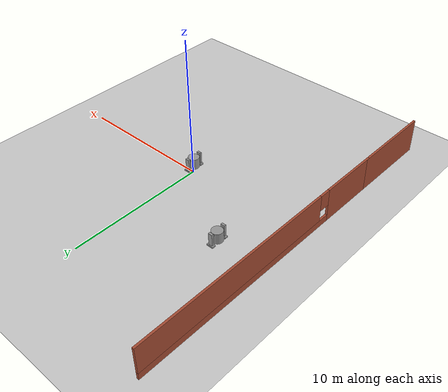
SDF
<sdf version="1.6">
 <world name="default">
  <model name="ground_plane">
   <static>1</static>
   <link name="link">
    <collision name="collision">
     <geometry><plane><normal>0 0 1</normal><size>100 100</size></plane></geometry>
     <surface>
      <contact><collide_bitmask>65535</collide_bitmask></contact>
      <friction><ode><mu>100</mu><mu2>50</mu2></ode></friction>
     </surface>
    </collision>
    <visual name="visual">
     <cast_shadows>0</cast_shadows>
     <geometry><plane><normal>0 0 1</normal><size>100 100</size></plane></geometry>
     <material>
      <script><uri>file://media/materials/scripts/gazebo.material</uri><name>Gazebo/Grey</name></script>
     </material>
    </visual>
   </link>
  </model>
  <model name="robot3">
   <link name="link_2">
    <pose>0.005 -0 -0.064976 0 -0 0</pose>
    <inertial>
     <mass>1</mass>
     <inertia><ixx>0.145833</ixx><ixy>0</ixy><ixz>0</ixz><iyy>0.145833</iyy><iyz>0</iyz><izz>0.125</izz></inertia>
    </inertial>
    <visual name="visual">
     <geometry><cylinder><radius>0.4</radius><length>0.8</length></cylinder></geometry>
     <material>
      <lighting>1</lighting>
      <script><uri>file://media/materials/scripts/gazebo.material</uri><name>Gazebo/Grey</name></script>
      <shader type="pixel"><normal_map>__default__</normal_map></shader>
      <ambient>0.3 0.3 0.3 1</ambient>
      <diffuse>0.7 0.7 0.7 1</diffuse>
      <specular>0.01 0.01 0.01 1</specular>
      <emissive>0 0 0 1</emissive>
     </material>
    </visual>
    <collision name="collision">
     <geometry><cylinder><radius>0.4</radius><length>0.8</length></cylinder></geometry>
     <surface>
      <friction>
       <ode><mu>1</mu><mu2>1</mu2><fdir1>0 0 0</fdir1><slip1>0</slip1><slip2>0</slip2></ode>
       <torsional>
        <coefficient>1</coefficient>
        <patch_radius>0</patch_radius>
        <surface_radius>0</surface_radius>
        <use_patch_radius>1</use_patch_radius>
        <ode><slip>0</slip></ode>
       </torsional>
      </friction>
      <bounce><restitution_coefficient>0</restitution_coefficient><threshold>1e+06</threshold></bounce>
      <contact>
       <collide_without_contact>0</collide_without_contact>
       <collide_without_contact_bitmask>1</collide_without_contact_bitmask>
       <collide_bitmask>1</collide_bitmask>
       <ode>
        <soft_cfm>0</soft_cfm>
        <soft_erp>0.2</soft_erp>
        <kp>1e+13</kp>
        <kd>1</kd>
        <max_vel>0.01</max_vel>
        <min_depth>0</min_depth>
       </ode>
       <bullet>
        <split_impulse>1</split_impulse>
        <split_impulse_penetration_threshold>-0.01</split_impulse_penetration_threshold>
        <soft_cfm>0</soft_cfm>
        <soft_erp>0.2</soft_erp>
        <kp>1e+13</kp>
        <kd>1</kd>
       </bullet>
      </contact>
     </surface>
    </collision>
   </link>
   <link name="link_0">
    <pose>0.00499 0.565134 -0.515032 -0.000625 0 -0.000608</pose>
    <inertial>
     <mass>1</mass>
     <inertia>
      <ixx>0.166667</ixx>
      <ixy>0</ixy>
      <ixz>0</ixz>
      <iyy>0.166667</iyy>
      <iyz>0</iyz>
      <izz>0.166667</izz>
     </inertia>
    </inertial>
    <visual name="visual">
     <geometry><box><size>0.5 0.25 0.1</size></box></geometry>
     <material>
      <lighting>1</lighting>
      <script><uri>file://media/materials/scripts/gazebo.material</uri><name>Gazebo/Grey</name></script>
      <shader type="pixel"><normal_map>__default__</normal_map></shader>
      <ambient>0.3 0.3 0.3 1</ambient>
      <diffuse>0.7 0.7 0.7 1</diffuse>
      <specular>0.01 0.01 0.01 1</specular>
      <emissive>0 0 0 1</emissive>
     </material>
    </visual>
    <collision name="collision">
     <geometry><box><size>0.5 0.25 0.1</size></box></geometry>
     <surface>
      <friction>
       <ode><mu>1</mu><mu2>1</mu2><fdir1>0 0 0</fdir1><slip1>0</slip1><slip2>0</slip2></ode>
       <torsional>
        <coefficient>1</coefficient>
        <patch_radius>0</patch_radius>
        <surface_radius>0</surface_radius>
        <use_patch_radius>1</use_patch_radius>
        <ode><slip>0</slip></ode>
       </torsional>
      </friction>
      <bounce><restitution_coefficient>0</restitution_coefficient><threshold>1e+06</threshold></bounce>
      <contact>
       <collide_without_contact>0</collide_without_contact>
       <collide_without_contact_bitmask>1</collide_without_contact_bitmask>
       <collide_bitmask>1</collide_bitmask>
       <ode>
        <soft_cfm>0</soft_cfm>
        <soft_erp>0.2</soft_erp>
        <kp>1e+13</kp>
        <kd>1</kd>
        <max_vel>0.01</max_vel>
        <min_depth>0</min_depth>
       </ode>
       <bullet>
        <split_impulse>1</split_impulse>
        <split_impulse_penetration_threshold>-0.01</split_impulse_penetration_threshold>
        <soft_cfm>0</soft_cfm>
        <soft_erp>0.2</soft_erp>
        <kp>1e+13</kp>
        <kd>1</kd>
       </bullet>
      </contact>
     </surface>
    </collision>
   </link>
   <link name="link_0_clone">
    <pose>0.00499 -0.535072 -0.514954 -0.00125 -1e-06 -0.001216</pose>
    <inertial>
     <mass>1</mass>
     <inertia>
      <ixx>0.166667</ixx>
      <ixy>0</ixy>
      <ixz>0</ixz>
      <iyy>0.166667</iyy>
      <iyz>0</iyz>
      <izz>0.166667</izz>
     </inertia>
    </inertial>
    <visual name="visual">
     <geometry><box><size>0.5 0.25 0.1</size></box></geometry>
     <material>
      <lighting>1</lighting>
      <script><uri>file://media/materials/scripts/gazebo.material</uri><name>Gazebo/Grey</name></script>
      <shader type="pixel"><normal_map>__default__</normal_map></shader>
      <ambient>0.3 0.3 0.3 1</ambient>
      <diffuse>0.7 0.7 0.7 1</diffuse>
      <specular>0.01 0.01 0.01 1</specular>
      <emissive>0 0 0 1</emissive>
     </material>
    </visual>
    <collision name="collision">
     <geometry><box><size>0.5 0.25 0.1</size></box></geometry>
     <surface>
      <friction>
       <ode><mu>1</mu><mu2>1</mu2><fdir1>0 0 0</fdir1><slip1>0</slip1><slip2>0</slip2></ode>
       <torsional>
        <coefficient>1</coefficient>
        <patch_radius>0</patch_radius>
        <surface_radius>0</surface_radius>
        <use_patch_radius>1</use_patch_radius>
        <ode><slip>0</slip></ode>
       </torsional>
      </friction>
      <bounce><restitution_coefficient>0</restitution_coefficient><threshold>1e+06</threshold></bounce>
      <contact>
       <collide_without_contact>0</collide_without_contact>
       <collide_without_contact_bitmask>1</collide_without_contact_bitmask>
       <collide_bitmask>1</collide_bitmask>
       <ode>
        <soft_cfm>0</soft_cfm>
        <soft_erp>0.2</soft_erp>
        <kp>1e+13</kp>
        <kd>1</kd>
        <max_vel>0.01</max_vel>
        <min_depth>0</min_depth>
       </ode>
       <bullet>
        <split_impulse>1</split_impulse>
        <split_impulse_penetration_threshold>-0.01</split_impulse_penetration_threshold>
        <soft_cfm>0</soft_cfm>
        <soft_erp>0.2</soft_erp>
        <kp>1e+13</kp>
        <kd>1</kd>
       </bullet>
      </contact>
     </surface>
    </collision>
   </link>
   <link name="link_3">
    <pose>-0.015 -1e-06 0.194928 1.5707 -0 0</pose>
    <inertial>
     <mass>1</mass>
     <inertia><ixx>0.145833</ixx><ixy>0</ixy><ixz>0</ixz><iyy>0.145833</iyy><iyz>0</iyz><izz>0.125</izz></inertia>
    </inertial>
    <visual name="visual">
     <geometry><cylinder><radius>0.1</radius><length>1.25</length></cylinder></geometry>
     <material>
      <lighting>1</lighting>
      <script><uri>file://media/materials/scripts/gazebo.material</uri><name>Gazebo/Grey</name></script>
      <shader type="pixel"><normal_map>__default__</normal_map></shader>
      <ambient>0.3 0.3 0.3 1</ambient>
      <diffuse>0.7 0.7 0.7 1</diffuse>
      <specular>0.01 0.01 0.01 1</specular>
      <emissive>0 0 0 1</emissive>
     </material>
    </visual>
    <collision name="collision">
     <geometry><cylinder><radius>0.1</radius><length>1.25</length></cylinder></geometry>
     <surface>
      <friction>
       <ode><mu>1</mu><mu2>1</mu2><fdir1>0 0 0</fdir1><slip1>0</slip1><slip2>0</slip2></ode>
       <torsional>
        <coefficient>1</coefficient>
        <patch_radius>0</patch_radius>
        <surface_radius>0</surface_radius>
        <use_patch_radius>1</use_patch_radius>
        <ode><slip>0</slip></ode>
       </torsional>
      </friction>
      <bounce><restitution_coefficient>0</restitution_coefficient><threshold>1e+06</threshold></bounce>
      <contact>
       <collide_without_contact>0</collide_without_contact>
       <collide_without_contact_bitmask>1</collide_without_contact_bitmask>
       <collide_bitmask>1</collide_bitmask>
       <ode>
        <soft_cfm>0</soft_cfm>
        <soft_erp>0.2</soft_erp>
        <kp>1e+13</kp>
        <kd>1</kd>
        <max_vel>0.01</max_vel>
        <min_depth>0</min_depth>
       </ode>
       <bullet>
        <split_impulse>1</split_impulse>
        <split_impulse_penetration_threshold>-0.01</split_impulse_penetration_threshold>
        <soft_cfm>0</soft_cfm>
        <soft_erp>0.2</soft_erp>
        <kp>1e+13</kp>
        <kd>1</kd>
       </bullet>
      </contact>
     </surface>
    </collision>
   </link>
   <link name="link_4">
    <pose>0.005 -0.550011 -0.064976 0 -0 0</pose>
    <inertial>
     <mass>1</mass>
     <inertia>
      <ixx>0.166667</ixx>
      <ixy>0</ixy>
      <ixz>0</ixz>
      <iyy>0.166667</iyy>
      <iyz>0</iyz>
      <izz>0.166667</izz>
     </inertia>
    </inertial>
    <visual name="visual">
     <geometry><box><size>0.3 0.15 1</size></box></geometry>
     <material>
      <lighting>1</lighting>
      <script><uri>file://media/materials/scripts/gazebo.material</uri><name>Gazebo/Grey</name></script>
      <shader type="pixel"><normal_map>__default__</normal_map></shader>
      <ambient>0.3 0.3 0.3 1</ambient>
      <diffuse>0.7 0.7 0.7 1</diffuse>
      <specular>0.01 0.01 0.01 1</specular>
      <emissive>0 0 0 1</emissive>
     </material>
    </visual>
    <collision name="collision">
     <geometry><box><size>0.3 0.15 1</size></box></geometry>
     <surface>
      <friction>
       <ode><mu>1</mu><mu2>1</mu2><fdir1>0 0 0</fdir1><slip1>0</slip1><slip2>0</slip2></ode>
       <torsional>
        <coefficient>1</coefficient>
        <patch_radius>0</patch_radius>
        <surface_radius>0</surface_radius>
        <use_patch_radius>1</use_patch_radius>
        <ode><slip>0</slip></ode>
       </torsional>
      </friction>
      <bounce><restitution_coefficient>0</restitution_coefficient><threshold>1e+06</threshold></bounce>
      <contact>
       <collide_without_contact>0</collide_without_contact>
       <collide_without_contact_bitmask>1</collide_without_contact_bitmask>
       <collide_bitmask>1</collide_bitmask>
       <ode>
        <soft_cfm>0</soft_cfm>
        <soft_erp>0.2</soft_erp>
        <kp>1e+13</kp>
        <kd>1</kd>
        <max_vel>0.01</max_vel>
        <min_depth>0</min_depth>
       </ode>
       <bullet>
        <split_impulse>1</split_impulse>
        <split_impulse_penetration_threshold>-0.01</split_impulse_penetration_threshold>
        <soft_cfm>0</soft_cfm>
        <soft_erp>0.2</soft_erp>
        <kp>1e+13</kp>
        <kd>1</kd>
       </bullet>
      </contact>
     </surface>
    </collision>
   </link>
   <link name="link_4_clone">
    <pose>0.005 0.550012 -0.064976 0 -0 0</pose>
    <inertial>
     <mass>1</mass>
     <inertia>
      <ixx>0.166667</ixx>
      <ixy>0</ixy>
      <ixz>0</ixz>
      <iyy>0.166667</iyy>
      <iyz>0</iyz>
      <izz>0.166667</izz>
     </inertia>
    </inertial>
    <visual name="visual">
     <geometry><box><size>0.3 0.15 1</size></box></geometry>
     <material>
      <lighting>1</lighting>
      <script><uri>file://media/materials/scripts/gazebo.material</uri><name>Gazebo/Grey</name></script>
      <shader type="pixel"><normal_map>__default__</normal_map></shader>
      <ambient>0.3 0.3 0.3 1</ambient>
      <diffuse>0.7 0.7 0.7 1</diffuse>
      <specular>0.01 0.01 0.01 1</specular>
      <emissive>0 0 0 1</emissive>
     </material>
    </visual>
    <collision name="collision">
     <geometry><box><size>0.3 0.15 1</size></box></geometry>
     <surface>
      <friction>
       <ode><mu>1</mu><mu2>1</mu2><fdir1>0 0 0</fdir1><slip1>0</slip1><slip2>0</slip2></ode>
       <torsional>
        <coefficient>1</coefficient>
        <patch_radius>0</patch_radius>
        <surface_radius>0</surface_radius>
        <use_patch_radius>1</use_patch_radius>
        <ode><slip>0</slip></ode>
       </torsional>
      </friction>
      <bounce><restitution_coefficient>0</restitution_coefficient><threshold>1e+06</threshold></bounce>
      <contact>
       <collide_without_contact>0</collide_without_contact>
       <collide_without_contact_bitmask>1</collide_without_contact_bitmask>
       <collide_bitmask>1</collide_bitmask>
       <ode>
        <soft_cfm>0</soft_cfm>
        <soft_erp>0.2</soft_erp>
        <kp>1e+13</kp>
        <kd>1</kd>
        <max_vel>0.01</max_vel>
        <min_depth>0</min_depth>
       </ode>
       <bullet>
        <split_impulse>1</split_impulse>
        <split_impulse_penetration_threshold>-0.01</split_impulse_penetration_threshold>
        <soft_cfm>0</soft_cfm>
        <soft_erp>0.2</soft_erp>
        <kp>1e+13</kp>
        <kd>1</kd>
       </bullet>
      </contact>
     </surface>
    </collision>
   </link>
   <joint name="link_2_JOINT_2" type="revolute">
    <parent>link_2</parent>
    <child>link_3</child>
    <axis>
     <xyz>1 0 0</xyz>
     <use_parent_model_frame>0</use_parent_model_frame>
     <limit>
      <lower>-1.79769e+308</lower>
      <upper>1.79769e+308</upper>
      <effort>-1</effort>
      <velocity>-1</velocity>
     </limit>
     <dynamics>
      <spring_reference>0</spring_reference>
      <spring_stiffness>0</spring_stiffness>
      <damping>0</damping>
      <friction>0</friction>
     </dynamics>
    </axis>
    <physics>
     <ode><limit><cfm>0</cfm><erp>0.2</erp></limit><suspension><cfm>0</cfm><erp>0.2</erp></suspension></ode>
    </physics>
   </joint>
   <joint name="link_3_JOINT_3" type="revolute">
    <parent>link_3</parent>
    <child>link_4</child>
    <axis>
     <xyz>1 0 0</xyz>
     <use_parent_model_frame>0</use_parent_model_frame>
     <limit>
      <lower>-1.79769e+308</lower>
      <upper>1.79769e+308</upper>
      <effort>-1</effort>
      <velocity>-1</velocity>
     </limit>
     <dynamics>
      <spring_reference>0</spring_reference>
      <spring_stiffness>0</spring_stiffness>
      <damping>0</damping>
      <friction>0</friction>
     </dynamics>
    </axis>
    <physics>
     <ode><limit><cfm>0</cfm><erp>0.2</erp></limit><suspension><cfm>0</cfm><erp>0.2</erp></suspension></ode>
    </physics>
   </joint>
   <joint name="link_3_JOINT_4" type="revolute">
    <parent>link_3</parent>
    <child>link_4_clone</child>
    <axis>
     <xyz>1 0 0</xyz>
     <use_parent_model_frame>0</use_parent_model_frame>
     <limit>
      <lower>-1.79769e+308</lower>
      <upper>1.79769e+308</upper>
      <effort>-1</effort>
      <velocity>-1</velocity>
     </limit>
     <dynamics>
      <spring_reference>0</spring_reference>
      <spring_stiffness>0</spring_stiffness>
      <damping>0</damping>
      <friction>0</friction>
     </dynamics>
    </axis>
    <physics>
     <ode><limit><cfm>0</cfm><erp>0.2</erp></limit><suspension><cfm>0</cfm><erp>0.2</erp></suspension></ode>
    </physics>
   </joint>
   <joint name="link_4_JOINT_1" type="fixed">
    <parent>link_4</parent>
    <child>link_0_clone</child>
    <physics>
     <ode><limit><cfm>0</cfm><erp>0.2</erp></limit><suspension><cfm>0</cfm><erp>0.2</erp></suspension></ode>
    </physics>
   </joint>
   <joint name="link_4_clone_JOINT_0" type="fixed">
    <parent>link_4_clone</parent>
    <child>link_0</child>
    <physics>
     <ode><limit><cfm>0</cfm><erp>0.2</erp></limit><suspension><cfm>0</cfm><erp>0.2</erp></suspension></ode>
    </physics>
   </joint>
   <static>0</static>
   <pose>0.332445 -0.438645 0.565017 -0.000387 -3e-06 0.013557</pose>
  </model>
  <model name="Building">
   <link name="Wall_0">
    <pose>-11.05 2.85254 0 0 -0 1.5708</pose>
    <visual name="Wall_0_Visual_0">
     <pose>-7.80775 0 1.25 0 -0 0</pose>
     <geometry><box><size>4.3845 0.15 2.5</size></box></geometry>
     <material>
      <script><uri>file://media/materials/scripts/gazebo.material</uri><name>Gazebo/Bricks</name></script>
      <ambient>1 1 1 1</ambient>
      <shader type="pixel"/>
      <diffuse>1 1 1 1</diffuse>
      <specular>0.2 0.2 0.2 1</specular>
      <emissive>0 0 0 1</emissive>
     </material>
     <meta><layer>0</layer></meta>
    </visual>
    <visual name="Wall_0_Visual_1">
     <pose>2.19225 0 0.25 0 -0 0</pose>
     <geometry><box><size>15.6155 0.15 0.5</size></box></geometry>
     <material>
      <script><uri>file://media/materials/scripts/gazebo.material</uri><name>Gazebo/Bricks</name></script>
      <ambient>1 1 1 1</ambient>
      <shader type="pixel"/>
      <diffuse>1 1 1 1</diffuse>
      <specular>0.2 0.2 0.2 1</specular>
      <emissive>0 0 0 1</emissive>
     </material>
     <meta><layer>0</layer></meta>
    </visual>
    <visual name="Wall_0_Visual_2">
     <pose>2.59225 0 1.5 0 -0 0</pose>
     <geometry><box><size>14.8155 0.15 2</size></box></geometry>
     <material>
      <script><uri>file://media/materials/scripts/gazebo.material</uri><name>Gazebo/Bricks</name></script>
      <ambient>1 1 1 1</ambient>
      <shader type="pixel"/>
      <diffuse>1 1 1 1</diffuse>
      <specular>0.2 0.2 0.2 1</specular>
      <emissive>0 0 0 1</emissive>
     </material>
     <meta><layer>0</layer></meta>
    </visual>
    <visual name="Wall_0_Visual_3">
     <pose>-5.2155 0 1.9 0 -0 0</pose>
     <geometry><box><size>0.8 0.15 1.2</size></box></geometry>
     <material>
      <script><uri>file://media/materials/scripts/gazebo.material</uri><name>Gazebo/Bricks</name></script>
      <ambient>1 1 1 1</ambient>
      <shader type="pixel"/>
      <diffuse>1 1 1 1</diffuse>
      <specular>0.2 0.2 0.2 1</specular>
      <emissive>0 0 0 1</emissive>
     </material>
     <meta><layer>0</layer></meta>
    </visual>
    <collision name="Wall_0_Collision_0">
     <pose>-7.80775 0 1.25 0 -0 0</pose>
     <geometry><box><size>4.3845 0.15 2.5</size></box></geometry>
     <surface>
      <friction>
       <ode><mu>1</mu><mu2>1</mu2><fdir1>0 0 0</fdir1><slip1>0</slip1><slip2>0</slip2></ode>
       <torsional>
        <coefficient>1</coefficient>
        <patch_radius>0</patch_radius>
        <surface_radius>0</surface_radius>
        <use_patch_radius>1</use_patch_radius>
        <ode><slip>0</slip></ode>
       </torsional>
      </friction>
      <bounce><restitution_coefficient>0</restitution_coefficient><threshold>1e+06</threshold></bounce>
      <contact>
       <collide_without_contact>0</collide_without_contact>
       <collide_without_contact_bitmask>1</collide_without_contact_bitmask>
       <collide_bitmask>1</collide_bitmask>
       <ode>
        <soft_cfm>0</soft_cfm>
        <soft_erp>0.2</soft_erp>
        <kp>1e+13</kp>
        <kd>1</kd>
        <max_vel>0.01</max_vel>
        <min_depth>0</min_depth>
       </ode>
       <bullet>
        <split_impulse>1</split_impulse>
        <split_impulse_penetration_threshold>-0.01</split_impulse_penetration_threshold>
        <soft_cfm>0</soft_cfm>
        <soft_erp>0.2</soft_erp>
        <kp>1e+13</kp>
        <kd>1</kd>
       </bullet>
      </contact>
     </surface>
    </collision>
    <collision name="Wall_0_Collision_1">
     <pose>2.19225 0 0.25 0 -0 0</pose>
     <geometry><box><size>15.6155 0.15 0.5</size></box></geometry>
     <surface>
      <friction>
       <ode><mu>1</mu><mu2>1</mu2><fdir1>0 0 0</fdir1><slip1>0</slip1><slip2>0</slip2></ode>
       <torsional>
        <coefficient>1</coefficient>
        <patch_radius>0</patch_radius>
        <surface_radius>0</surface_radius>
        <use_patch_radius>1</use_patch_radius>
        <ode><slip>0</slip></ode>
       </torsional>
      </friction>
      <bounce><restitution_coefficient>0</restitution_coefficient><threshold>1e+06</threshold></bounce>
      <contact>
       <collide_without_contact>0</collide_without_contact>
       <collide_without_contact_bitmask>1</collide_without_contact_bitmask>
       <collide_bitmask>1</collide_bitmask>
       <ode>
        <soft_cfm>0</soft_cfm>
        <soft_erp>0.2</soft_erp>
        <kp>1e+13</kp>
        <kd>1</kd>
        <max_vel>0.01</max_vel>
        <min_depth>0</min_depth>
       </ode>
       <bullet>
        <split_impulse>1</split_impulse>
        <split_impulse_penetration_threshold>-0.01</split_impulse_penetration_threshold>
        <soft_cfm>0</soft_cfm>
        <soft_erp>0.2</soft_erp>
        <kp>1e+13</kp>
        <kd>1</kd>
       </bullet>
      </contact>
     </surface>
    </collision>
    <collision name="Wall_0_Collision_2">
     <pose>2.59225 0 1.5 0 -0 0</pose>
     <geometry><box><size>14.8155 0.15 2</size></box></geometry>
     <surface>
      <friction>
       <ode><mu>1</mu><mu2>1</mu2><fdir1>0 0 0</fdir1><slip1>0</slip1><slip2>0</slip2></ode>
       <torsional>
        <coefficient>1</coefficient>
        <patch_radius>0</patch_radius>
        <surface_radius>0</surface_radius>
        <use_patch_radius>1</use_patch_radius>
        <ode><slip>0</slip></ode>
       </torsional>
      </friction>
      <bounce><restitution_coefficient>0</restitution_coefficient><threshold>1e+06</threshold></bounce>
      <contact>
       <collide_without_contact>0</collide_without_contact>
       <collide_without_contact_bitmask>1</collide_without_contact_bitmask>
       <collide_bitmask>1</collide_bitmask>
       <ode>
        <soft_cfm>0</soft_cfm>
        <soft_erp>0.2</soft_erp>
        <kp>1e+13</kp>
        <kd>1</kd>
        <max_vel>0.01</max_vel>
        <min_depth>0</min_depth>
       </ode>
       <bullet>
        <split_impulse>1</split_impulse>
        <split_impulse_penetration_threshold>-0.01</split_impulse_penetration_threshold>
        <soft_cfm>0</soft_cfm>
        <soft_erp>0.2</soft_erp>
        <kp>1e+13</kp>
        <kd>1</kd>
       </bullet>
      </contact>
     </surface>
    </collision>
    <collision name="Wall_0_Collision_3">
     <pose>-5.2155 0 1.9 0 -0 0</pose>
     <geometry><box><size>0.8 0.15 1.2</size></box></geometry>
     <surface>
      <friction>
       <ode><mu>1</mu><mu2>1</mu2><fdir1>0 0 0</fdir1><slip1>0</slip1><slip2>0</slip2></ode>
       <torsional>
        <coefficient>1</coefficient>
        <patch_radius>0</patch_radius>
        <surface_radius>0</surface_radius>
        <use_patch_radius>1</use_patch_radius>
        <ode><slip>0</slip></ode>
       </torsional>
      </friction>
      <bounce><restitution_coefficient>0</restitution_coefficient><threshold>1e+06</threshold></bounce>
      <contact>
       <collide_without_contact>0</collide_without_contact>
       <collide_without_contact_bitmask>1</collide_without_contact_bitmask>
       <collide_bitmask>1</collide_bitmask>
       <ode>
        <soft_cfm>0</soft_cfm>
        <soft_erp>0.2</soft_erp>
        <kp>1e+13</kp>
        <kd>1</kd>
        <max_vel>0.01</max_vel>
        <min_depth>0</min_depth>
       </ode>
       <bullet>
        <split_impulse>1</split_impulse>
        <split_impulse_penetration_threshold>-0.01</split_impulse_penetration_threshold>
        <soft_cfm>0</soft_cfm>
        <soft_erp>0.2</soft_erp>
        <kp>1e+13</kp>
        <kd>1</kd>
       </bullet>
      </contact>
     </surface>
    </collision>
   </link>
   <link name="Wall_6">
    <pose>-11.05 -9.89746 0 0 -0 1.5708</pose>
    <visual name="Wall_6_Visual">
     <pose>0 0 1.25 0 -0 0</pose>
     <geometry><box><size>6 0.15 2.5</size></box></geometry>
     <material>
      <script><uri>file://media/materials/scripts/gazebo.material</uri><name>Gazebo/Bricks</name></script>
      <ambient>1 1 1 1</ambient>
      <shader type="pixel"/>
      <diffuse>1 1 1 1</diffuse>
      <specular>0.2 0.2 0.2 1</specular>
      <emissive>0 0 0 1</emissive>
     </material>
     <meta><layer>0</layer></meta>
    </visual>
    <collision name="Wall_6_Collision">
     <pose>0 0 1.25 0 -0 0</pose>
     <geometry><box><size>6 0.15 2.5</size></box></geometry>
     <surface>
      <friction>
       <ode><mu>1</mu><mu2>1</mu2><fdir1>0 0 0</fdir1><slip1>0</slip1><slip2>0</slip2></ode>
       <torsional>
        <coefficient>1</coefficient>
        <patch_radius>0</patch_radius>
        <surface_radius>0</surface_radius>
        <use_patch_radius>1</use_patch_radius>
        <ode><slip>0</slip></ode>
       </torsional>
      </friction>
      <bounce><restitution_coefficient>0</restitution_coefficient><threshold>1e+06</threshold></bounce>
      <contact>
       <collide_without_contact>0</collide_without_contact>
       <collide_without_contact_bitmask>1</collide_without_contact_bitmask>
       <collide_bitmask>1</collide_bitmask>
       <ode>
        <soft_cfm>0</soft_cfm>
        <soft_erp>0.2</soft_erp>
        <kp>1e+13</kp>
        <kd>1</kd>
        <max_vel>0.01</max_vel>
        <min_depth>0</min_depth>
       </ode>
       <bullet>
        <split_impulse>1</split_impulse>
        <split_impulse_penetration_threshold>-0.01</split_impulse_penetration_threshold>
        <soft_cfm>0</soft_cfm>
        <soft_erp>0.2</soft_erp>
        <kp>1e+13</kp>
        <kd>1</kd>
       </bullet>
      </contact>
     </surface>
    </collision>
   </link>
   <static>1</static>
   <pose>1.3463 0.605074 0 0 -0 0</pose>
  </model>
  <model name="robot3_0">
   <link name="link_2">
    <pose>0.005 -0 -0.064976 0 -0 0</pose>
    <inertial>
     <mass>1</mass>
     <inertia><ixx>0.145833</ixx><ixy>0</ixy><ixz>0</ixz><iyy>0.145833</iyy><iyz>0</iyz><izz>0.125</izz></inertia>
    </inertial>
    <visual name="visual">
     <geometry><cylinder><radius>0.4</radius><length>0.8</length></cylinder></geometry>
     <material>
      <lighting>1</lighting>
      <script><uri>file://media/materials/scripts/gazebo.material</uri><name>Gazebo/Grey</name></script>
      <shader type="pixel"><normal_map>__default__</normal_map></shader>
      <ambient>0.3 0.3 0.3 1</ambient>
      <diffuse>0.7 0.7 0.7 1</diffuse>
      <specular>0.01 0.01 0.01 1</specular>
      <emissive>0 0 0 1</emissive>
     </material>
    </visual>
    <collision name="collision">
     <geometry><cylinder><radius>0.4</radius><length>0.8</length></cylinder></geometry>
     <surface>
      <friction>
       <ode><mu>1</mu><mu2>1</mu2><fdir1>0 0 0</fdir1><slip1>0</slip1><slip2>0</slip2></ode>
       <torsional>
        <coefficient>1</coefficient>
        <patch_radius>0</patch_radius>
        <surface_radius>0</surface_radius>
        <use_patch_radius>1</use_patch_radius>
        <ode><slip>0</slip></ode>
       </torsional>
      </friction>
      <bounce><restitution_coefficient>0</restitution_coefficient><threshold>1e+06</threshold></bounce>
      <contact>
       <collide_without_contact>0</collide_without_contact>
       <collide_without_contact_bitmask>1</collide_without_contact_bitmask>
       <collide_bitmask>1</collide_bitmask>
       <ode>
        <soft_cfm>0</soft_cfm>
        <soft_erp>0.2</soft_erp>
        <kp>1e+13</kp>
        <kd>1</kd>
        <max_vel>0.01</max_vel>
        <min_depth>0</min_depth>
       </ode>
       <bullet>
        <split_impulse>1</split_impulse>
        <split_impulse_penetration_threshold>-0.01</split_impulse_penetration_threshold>
        <soft_cfm>0</soft_cfm>
        <soft_erp>0.2</soft_erp>
        <kp>1e+13</kp>
        <kd>1</kd>
       </bullet>
      </contact>
     </surface>
    </collision>
   </link>
   <link name="link_0">
    <pose>0.00499 0.565134 -0.515032 -0.000625 0 -0.000608</pose>
    <inertial>
     <mass>1</mass>
     <inertia>
      <ixx>0.166667</ixx>
      <ixy>0</ixy>
      <ixz>0</ixz>
      <iyy>0.166667</iyy>
      <iyz>0</iyz>
      <izz>0.166667</izz>
     </inertia>
    </inertial>
    <visual name="visual">
     <geometry><box><size>0.5 0.25 0.1</size></box></geometry>
     <material>
      <lighting>1</lighting>
      <script><uri>file://media/materials/scripts/gazebo.material</uri><name>Gazebo/Grey</name></script>
      <shader type="pixel"><normal_map>__default__</normal_map></shader>
      <ambient>0.3 0.3 0.3 1</ambient>
      <diffuse>0.7 0.7 0.7 1</diffuse>
      <specular>0.01 0.01 0.01 1</specular>
      <emissive>0 0 0 1</emissive>
     </material>
    </visual>
    <collision name="collision">
     <geometry><box><size>0.5 0.25 0.1</size></box></geometry>
     <surface>
      <friction>
       <ode><mu>1</mu><mu2>1</mu2><fdir1>0 0 0</fdir1><slip1>0</slip1><slip2>0</slip2></ode>
       <torsional>
        <coefficient>1</coefficient>
        <patch_radius>0</patch_radius>
        <surface_radius>0</surface_radius>
        <use_patch_radius>1</use_patch_radius>
        <ode><slip>0</slip></ode>
       </torsional>
      </friction>
      <bounce><restitution_coefficient>0</restitution_coefficient><threshold>1e+06</threshold></bounce>
      <contact>
       <collide_without_contact>0</collide_without_contact>
       <collide_without_contact_bitmask>1</collide_without_contact_bitmask>
       <collide_bitmask>1</collide_bitmask>
       <ode>
        <soft_cfm>0</soft_cfm>
        <soft_erp>0.2</soft_erp>
        <kp>1e+13</kp>
        <kd>1</kd>
        <max_vel>0.01</max_vel>
        <min_depth>0</min_depth>
       </ode>
       <bullet>
        <split_impulse>1</split_impulse>
        <split_impulse_penetration_threshold>-0.01</split_impulse_penetration_threshold>
        <soft_cfm>0</soft_cfm>
        <soft_erp>0.2</soft_erp>
        <kp>1e+13</kp>
        <kd>1</kd>
       </bullet>
      </contact>
     </surface>
    </collision>
   </link>
   <link name="link_0_clone">
    <pose>0.00499 -0.535072 -0.514954 -0.00125 -1e-06 -0.001216</pose>
    <inertial>
     <mass>1</mass>
     <inertia>
      <ixx>0.166667</ixx>
      <ixy>0</ixy>
      <ixz>0</ixz>
      <iyy>0.166667</iyy>
      <iyz>0</iyz>
      <izz>0.166667</izz>
     </inertia>
    </inertial>
    <visual name="visual">
     <geometry><box><size>0.5 0.25 0.1</size></box></geometry>
     <material>
      <lighting>1</lighting>
      <script><uri>file://media/materials/scripts/gazebo.material</uri><name>Gazebo/Grey</name></script>
      <shader type="pixel"><normal_map>__default__</normal_map></shader>
      <ambient>0.3 0.3 0.3 1</ambient>
      <diffuse>0.7 0.7 0.7 1</diffuse>
      <specular>0.01 0.01 0.01 1</specular>
      <emissive>0 0 0 1</emissive>
     </material>
    </visual>
    <collision name="collision">
     <geometry><box><size>0.5 0.25 0.1</size></box></geometry>
     <surface>
      <friction>
       <ode><mu>1</mu><mu2>1</mu2><fdir1>0 0 0</fdir1><slip1>0</slip1><slip2>0</slip2></ode>
       <torsional>
        <coefficient>1</coefficient>
        <patch_radius>0</patch_radius>
        <surface_radius>0</surface_radius>
        <use_patch_radius>1</use_patch_radius>
        <ode><slip>0</slip></ode>
       </torsional>
      </friction>
      <bounce><restitution_coefficient>0</restitution_coefficient><threshold>1e+06</threshold></bounce>
      <contact>
       <collide_without_contact>0</collide_without_contact>
       <collide_without_contact_bitmask>1</collide_without_contact_bitmask>
       <collide_bitmask>1</collide_bitmask>
       <ode>
        <soft_cfm>0</soft_cfm>
        <soft_erp>0.2</soft_erp>
        <kp>1e+13</kp>
        <kd>1</kd>
        <max_vel>0.01</max_vel>
        <min_depth>0</min_depth>
       </ode>
       <bullet>
        <split_impulse>1</split_impulse>
        <split_impulse_penetration_threshold>-0.01</split_impulse_penetration_threshold>
        <soft_cfm>0</soft_cfm>
        <soft_erp>0.2</soft_erp>
        <kp>1e+13</kp>
        <kd>1</kd>
       </bullet>
      </contact>
     </surface>
    </collision>
   </link>
   <link name="link_3">
    <pose>-0.015 -1e-06 0.194928 1.5707 -0 0</pose>
    <inertial>
     <mass>1</mass>
     <inertia><ixx>0.145833</ixx><ixy>0</ixy><ixz>0</ixz><iyy>0.145833</iyy><iyz>0</iyz><izz>0.125</izz></inertia>
    </inertial>
    <visual name="visual">
     <geometry><cylinder><radius>0.1</radius><length>1.25</length></cylinder></geometry>
     <material>
      <lighting>1</lighting>
      <script><uri>file://media/materials/scripts/gazebo.material</uri><name>Gazebo/Grey</name></script>
      <shader type="pixel"><normal_map>__default__</normal_map></shader>
      <ambient>0.3 0.3 0.3 1</ambient>
      <diffuse>0.7 0.7 0.7 1</diffuse>
      <specular>0.01 0.01 0.01 1</specular>
      <emissive>0 0 0 1</emissive>
     </material>
    </visual>
    <collision name="collision">
     <geometry><cylinder><radius>0.1</radius><length>1.25</length></cylinder></geometry>
     <surface>
      <friction>
       <ode><mu>1</mu><mu2>1</mu2><fdir1>0 0 0</fdir1><slip1>0</slip1><slip2>0</slip2></ode>
       <torsional>
        <coefficient>1</coefficient>
        <patch_radius>0</patch_radius>
        <surface_radius>0</surface_radius>
        <use_patch_radius>1</use_patch_radius>
        <ode><slip>0</slip></ode>
       </torsional>
      </friction>
      <bounce><restitution_coefficient>0</restitution_coefficient><threshold>1e+06</threshold></bounce>
      <contact>
       <collide_without_contact>0</collide_without_contact>
       <collide_without_contact_bitmask>1</collide_without_contact_bitmask>
       <collide_bitmask>1</collide_bitmask>
       <ode>
        <soft_cfm>0</soft_cfm>
        <soft_erp>0.2</soft_erp>
        <kp>1e+13</kp>
        <kd>1</kd>
        <max_vel>0.01</max_vel>
        <min_depth>0</min_depth>
       </ode>
       <bullet>
        <split_impulse>1</split_impulse>
        <split_impulse_penetration_threshold>-0.01</split_impulse_penetration_threshold>
        <soft_cfm>0</soft_cfm>
        <soft_erp>0.2</soft_erp>
        <kp>1e+13</kp>
        <kd>1</kd>
       </bullet>
      </contact>
     </surface>
    </collision>
   </link>
   <link name="link_4">
    <pose>0.005 -0.550011 -0.064976 0 -0 0</pose>
    <inertial>
     <mass>1</mass>
     <inertia>
      <ixx>0.166667</ixx>
      <ixy>0</ixy>
      <ixz>0</ixz>
      <iyy>0.166667</iyy>
      <iyz>0</iyz>
      <izz>0.166667</izz>
     </inertia>
    </inertial>
    <visual name="visual">
     <geometry><box><size>0.3 0.15 1</size></box></geometry>
     <material>
      <lighting>1</lighting>
      <script><uri>file://media/materials/scripts/gazebo.material</uri><name>Gazebo/Grey</name></script>
      <shader type="pixel"><normal_map>__default__</normal_map></shader>
      <ambient>0.3 0.3 0.3 1</ambient>
      <diffuse>0.7 0.7 0.7 1</diffuse>
      <specular>0.01 0.01 0.01 1</specular>
      <emissive>0 0 0 1</emissive>
     </material>
    </visual>
    <collision name="collision">
     <geometry><box><size>0.3 0.15 1</size></box></geometry>
     <surface>
      <friction>
       <ode><mu>1</mu><mu2>1</mu2><fdir1>0 0 0</fdir1><slip1>0</slip1><slip2>0</slip2></ode>
       <torsional>
        <coefficient>1</coefficient>
        <patch_radius>0</patch_radius>
        <surface_radius>0</surface_radius>
        <use_patch_radius>1</use_patch_radius>
        <ode><slip>0</slip></ode>
       </torsional>
      </friction>
      <bounce><restitution_coefficient>0</restitution_coefficient><threshold>1e+06</threshold></bounce>
      <contact>
       <collide_without_contact>0</collide_without_contact>
       <collide_without_contact_bitmask>1</collide_without_contact_bitmask>
       <collide_bitmask>1</collide_bitmask>
       <ode>
        <soft_cfm>0</soft_cfm>
        <soft_erp>0.2</soft_erp>
        <kp>1e+13</kp>
        <kd>1</kd>
        <max_vel>0.01</max_vel>
        <min_depth>0</min_depth>
       </ode>
       <bullet>
        <split_impulse>1</split_impulse>
        <split_impulse_penetration_threshold>-0.01</split_impulse_penetration_threshold>
        <soft_cfm>0</soft_cfm>
        <soft_erp>0.2</soft_erp>
        <kp>1e+13</kp>
        <kd>1</kd>
       </bullet>
      </contact>
     </surface>
    </collision>
   </link>
   <link name="link_4_clone">
    <pose>0.005 0.550012 -0.064976 0 -0 0</pose>
    <inertial>
     <mass>1</mass>
     <inertia>
      <ixx>0.166667</ixx>
      <ixy>0</ixy>
      <ixz>0</ixz>
      <iyy>0.166667</iyy>
      <iyz>0</iyz>
      <izz>0.166667</izz>
     </inertia>
    </inertial>
    <visual name="visual">
     <geometry><box><size>0.3 0.15 1</size></box></geometry>
     <material>
      <lighting>1</lighting>
      <script><uri>file://media/materials/scripts/gazebo.material</uri><name>Gazebo/Grey</name></script>
      <shader type="pixel"><normal_map>__default__</normal_map></shader>
      <ambient>0.3 0.3 0.3 1</ambient>
      <diffuse>0.7 0.7 0.7 1</diffuse>
      <specular>0.01 0.01 0.01 1</specular>
      <emissive>0 0 0 1</emissive>
     </material>
    </visual>
    <collision name="collision">
     <geometry><box><size>0.3 0.15 1</size></box></geometry>
     <surface>
      <friction>
       <ode><mu>1</mu><mu2>1</mu2><fdir1>0 0 0</fdir1><slip1>0</slip1><slip2>0</slip2></ode>
       <torsional>
        <coefficient>1</coefficient>
        <patch_radius>0</patch_radius>
        <surface_radius>0</surface_radius>
        <use_patch_radius>1</use_patch_radius>
        <ode><slip>0</slip></ode>
       </torsional>
      </friction>
      <bounce><restitution_coefficient>0</restitution_coefficient><threshold>1e+06</threshold></bounce>
      <contact>
       <collide_without_contact>0</collide_without_contact>
       <collide_without_contact_bitmask>1</collide_without_contact_bitmask>
       <collide_bitmask>1</collide_bitmask>
       <ode>
        <soft_cfm>0</soft_cfm>
        <soft_erp>0.2</soft_erp>
        <kp>1e+13</kp>
        <kd>1</kd>
        <max_vel>0.01</max_vel>
        <min_depth>0</min_depth>
       </ode>
       <bullet>
        <split_impulse>1</split_impulse>
        <split_impulse_penetration_threshold>-0.01</split_impulse_penetration_threshold>
        <soft_cfm>0</soft_cfm>
        <soft_erp>0.2</soft_erp>
        <kp>1e+13</kp>
        <kd>1</kd>
       </bullet>
      </contact>
     </surface>
    </collision>
   </link>
   <joint name="link_2_JOINT_2" type="revolute">
    <parent>link_2</parent>
    <child>link_3</child>
    <axis>
     <xyz>1 0 0</xyz>
     <use_parent_model_frame>0</use_parent_model_frame>
     <limit>
      <lower>-1.79769e+308</lower>
      <upper>1.79769e+308</upper>
      <effort>-1</effort>
      <velocity>-1</velocity>
     </limit>
     <dynamics>
      <spring_reference>0</spring_reference>
      <spring_stiffness>0</spring_stiffness>
      <damping>0</damping>
      <friction>0</friction>
     </dynamics>
    </axis>
    <physics>
     <ode><limit><cfm>0</cfm><erp>0.2</erp></limit><suspension><cfm>0</cfm><erp>0.2</erp></suspension></ode>
    </physics>
   </joint>
   <joint name="link_3_JOINT_3" type="revolute">
    <parent>link_3</parent>
    <child>link_4</child>
    <axis>
     <xyz>1 0 0</xyz>
     <use_parent_model_frame>0</use_parent_model_frame>
     <limit>
      <lower>-1.79769e+308</lower>
      <upper>1.79769e+308</upper>
      <effort>-1</effort>
      <velocity>-1</velocity>
     </limit>
     <dynamics>
      <spring_reference>0</spring_reference>
      <spring_stiffness>0</spring_stiffness>
      <damping>0</damping>
      <friction>0</friction>
     </dynamics>
    </axis>
    <physics>
     <ode><limit><cfm>0</cfm><erp>0.2</erp></limit><suspension><cfm>0</cfm><erp>0.2</erp></suspension></ode>
    </physics>
   </joint>
   <joint name="link_3_JOINT_4" type="revolute">
    <parent>link_3</parent>
    <child>link_4_clone</child>
    <axis>
     <xyz>1 0 0</xyz>
     <use_parent_model_frame>0</use_parent_model_frame>
     <limit>
      <lower>-1.79769e+308</lower>
      <upper>1.79769e+308</upper>
      <effort>-1</effort>
      <velocity>-1</velocity>
     </limit>
     <dynamics>
      <spring_reference>0</spring_reference>
      <spring_stiffness>0</spring_stiffness>
      <damping>0</damping>
      <friction>0</friction>
     </dynamics>
    </axis>
    <physics>
     <ode><limit><cfm>0</cfm><erp>0.2</erp></limit><suspension><cfm>0</cfm><erp>0.2</erp></suspension></ode>
    </physics>
   </joint>
   <joint name="link_4_JOINT_1" type="fixed">
    <parent>link_4</parent>
    <child>link_0_clone</child>
    <physics>
     <ode><limit><cfm>0</cfm><erp>0.2</erp></limit><suspension><cfm>0</cfm><erp>0.2</erp></suspension></ode>
    </physics>
   </joint>
   <joint name="link_4_clone_JOINT_0" type="fixed">
    <parent>link_4_clone</parent>
    <child>link_0</child>
    <physics>
     <ode><limit><cfm>0</cfm><erp>0.2</erp></limit><suspension><cfm>0</cfm><erp>0.2</erp></suspension></ode>
    </physics>
   </joint>
   <static>0</static>
   <pose>-5.92412 3.77443 0.565023 0.000319 -1e-06 0.010516</pose>
  </model>
  <model name="cabinet">
   <static>1</static>
   <link name="cabinet_bottom_plate">
    <inertial>
     <pose>0 0 -1 0 -0 0</pose>
     <inertia><ixx>2.05</ixx><ixy>0</ixy><ixz>0</ixz><iyy>2.05</iyy><iyz>0</iyz><izz>2.05</izz></inertia>
     <mass>25</mass>
    </inertial>
    <collision name="cabinet_bottom_plate_geom">
     <pose>0 0 0.01 0 -0 0</pose>
     <geometry><box><size>0.45 0.45 0.02</size></box></geometry>
    </collision>
    <visual name="cabinet_bottom_plate_geom_visual">
     <pose>0 0 0.01 0 -0 0</pose>
     <geometry><box><size>0.45 0.45 0.02</size></box></geometry>
     <material>
      <script><uri>file://media/materials/scripts/gazebo.material</uri><name>Gazebo/Wood</name></script>
     </material>
    </visual>
    <collision name="cabinet_bottom_plate_geom_cabinet_back_plate">
     <pose>0.235 0 0.51 0 -0 0</pose>
     <geometry><box><size>0.02 0.45 1.02</size></box></geometry>
    </collision>
    <visual name="cabinet_bottom_plate_geom_cabinet_back_plate_visual">
     <pose>0.235 0 0.51 0 -0 0</pose>
     <geometry><box><size>0.02 0.45 1.02</size></box></geometry>
     <material>
      <script><uri>file://media/materials/scripts/gazebo.material</uri><name>Gazebo/Wood</name></script>
     </material>
    </visual>
    <collision name="cabinet_bottom_plate_geom_cabinet_left_plate">
     <pose>0 0.235 0.51 0 -0 0</pose>
     <geometry><box><size>0.45 0.02 1.02</size></box></geometry>
    </collision>
    <visual name="cabinet_bottom_plate_geom_cabinet_left_plate_visual">
     <pose>0 0.235 0.51 0 -0 0</pose>
     <geometry><box><size>0.45 0.02 1.02</size></box></geometry>
     <material>
      <script><uri>file://media/materials/scripts/gazebo.material</uri><name>Gazebo/Wood</name></script>
     </material>
    </visual>
    <collision name="cabinet_bottom_plate_geom_cabinet_middle_plate">
     <pose>0 0 0.51 0 -0 0</pose>
     <geometry><box><size>0.45 0.45 0.02</size></box></geometry>
    </collision>
    <visual name="cabinet_bottom_plate_geom_cabinet_middle_plate_visual">
     <pose>0 0 0.51 0 -0 0</pose>
     <geometry><box><size>0.45 0.45 0.02</size></box></geometry>
     <material>
      <script><uri>file://media/materials/scripts/gazebo.material</uri><name>Gazebo/Wood</name></script>
     </material>
    </visual>
    <collision name="cabinet_bottom_plate_geom_cabinet_right_plate">
     <pose>0 -0.235 0.51 0 -0 0</pose>
     <geometry><box><size>0.45 0.02 1.02</size></box></geometry>
    </collision>
    <visual name="cabinet_bottom_plate_geom_cabinet_right_plate_visual">
     <pose>0 -0.235 0.51 0 -0 0</pose>
     <geometry><box><size>0.45 0.02 1.02</size></box></geometry>
     <material>
      <script><uri>file://media/materials/scripts/gazebo.material</uri><name>Gazebo/Wood</name></script>
     </material>
    </visual>
    <collision name="cabinet_bottom_plate_geom_cabinet_top_plate">
     <pose>0 0 1.01 0 -0 0</pose>
     <geometry><box><size>0.45 0.45 0.02</size></box></geometry>
    </collision>
    <visual name="cabinet_bottom_plate_geom_cabinet_top_plate_visual">
     <pose>0 0 1.01 0 -0 0</pose>
     <geometry><box><size>0.45 0.45 0.02</size></box></geometry>
     <material>
      <script><uri>file://media/materials/scripts/gazebo.material</uri><name>Gazebo/Wood</name></script>
     </material>
    </visual>
   </link>
   <pose>-9.36946 -3.97177 0 0 -0 0</pose>
  </model>
 </world>
</sdf>
